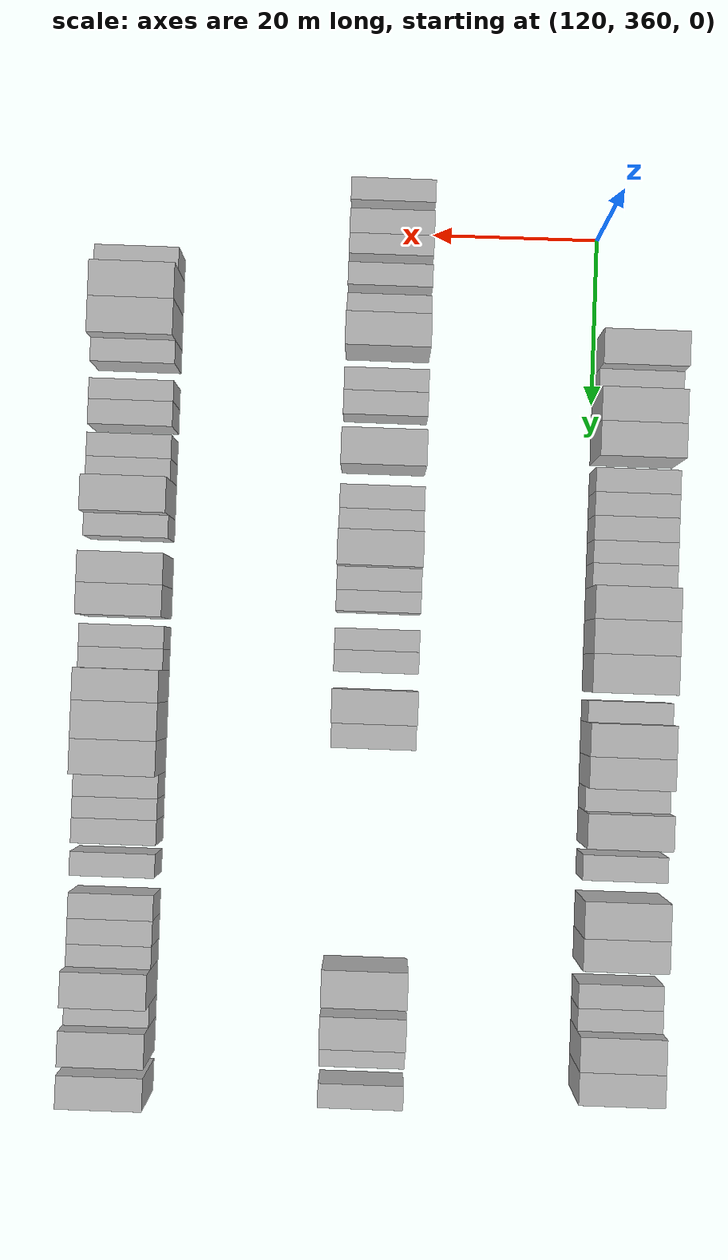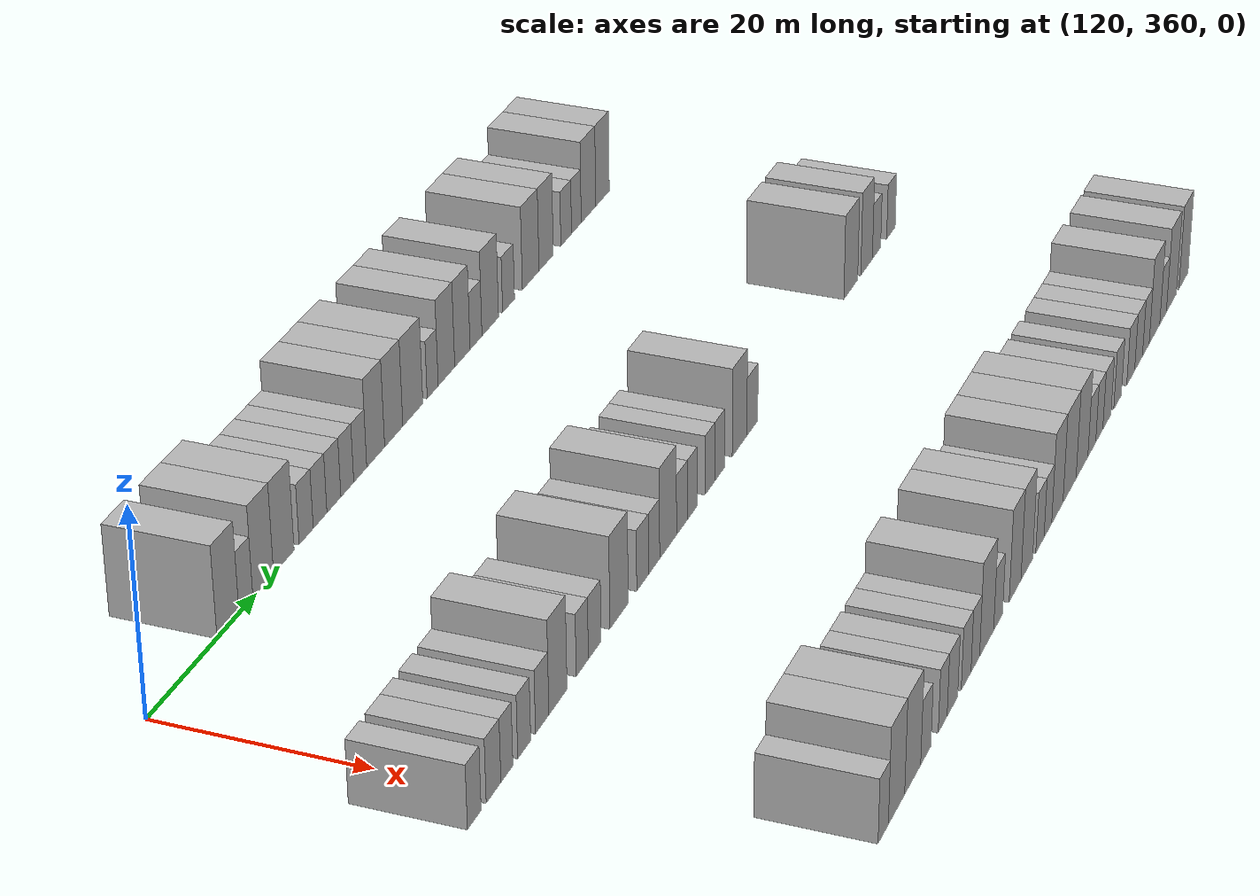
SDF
<sdf version="1.6">
 <world name="default">
  <model name="building_866">
   <static>1</static>
   <pose>115.0000 374.6631 0 0.000000 0.000000 0.000000</pose>
   <link name="link">
    <pose>0 0 4.50 0 0 0</pose>
    <collision name="collision"><geometry><box><size>10.0000 4.1017 9.0000</size></box></geometry></collision>
    <visual name="visual">
     <cast_shadows>0</cast_shadows>
     <geometry><box><size>10.0000 4.1017 9.0000</size></box></geometry>
     <material>
      <script>
       <uri>model://HANNAS_wall/materials/scripts</uri>
       <uri>model://HANNAS_wall/materials/textures</uri>
       <name>vrc/HANNAS_wall</name>
      </script>
     </material>
    </visual>
   </link>
  </model>
  <model name="building_867">
   <static>1</static>
   <pose>115.0000 378.0253 0 0.000000 0.000000 0.000000</pose>
   <link name="link">
    <pose>0 0 3.00 0 0 0</pose>
    <collision name="collision"><geometry><box><size>10.0000 2.6227 6.0000</size></box></geometry></collision>
    <visual name="visual">
     <cast_shadows>0</cast_shadows>
     <geometry><box><size>10.0000 2.6227 6.0000</size></box></geometry>
     <material>
      <script>
       <uri>model://HANNAS_wall/materials/scripts</uri>
       <uri>model://HANNAS_wall/materials/textures</uri>
       <name>vrc/HANNAS_wall</name>
      </script>
     </material>
    </visual>
   </link>
  </model>
  <model name="building_868">
   <static>1</static>
   <pose>115.0000 381.3270 0 0.000000 0.000000 0.000000</pose>
   <link name="link">
    <pose>0 0 4.50 0 0 0</pose>
    <collision name="collision"><geometry><box><size>10.0000 3.9809 9.0000</size></box></geometry></collision>
    <visual name="visual">
     <cast_shadows>0</cast_shadows>
     <geometry><box><size>10.0000 3.9809 9.0000</size></box></geometry>
     <material>
      <script>
       <uri>model://HANNAS_wall/materials/scripts</uri>
       <uri>model://HANNAS_wall/materials/textures</uri>
       <name>vrc/HANNAS_wall</name>
      </script>
     </material>
    </visual>
   </link>
  </model>
  <model name="building_869">
   <static>1</static>
   <pose>115.0000 385.3400 0 0.000000 0.000000 0.000000</pose>
   <link name="link">
    <pose>0 0 4.50 0 0 0</pose>
    <collision name="collision"><geometry><box><size>10.0000 4.0450 9.0000</size></box></geometry></collision>
    <visual name="visual">
     <cast_shadows>0</cast_shadows>
     <geometry><box><size>10.0000 4.0450 9.0000</size></box></geometry>
     <material>
      <script>
       <uri>model://HANNAS_wall/materials/scripts</uri>
       <uri>model://HANNAS_wall/materials/textures</uri>
       <name>vrc/HANNAS_wall</name>
      </script>
     </material>
    </visual>
   </link>
  </model>
  <model name="building_870">
   <static>1</static>
   <pose>115.0000 389.7864 0 0.000000 0.000000 0.000000</pose>
   <link name="link">
    <pose>0 0 3.00 0 0 0</pose>
    <collision name="collision"><geometry><box><size>10.0000 2.8479 6.0000</size></box></geometry></collision>
    <visual name="visual">
     <cast_shadows>0</cast_shadows>
     <geometry><box><size>10.0000 2.8479 6.0000</size></box></geometry>
     <material>
      <script>
       <uri>model://HANNAS_wall/materials/scripts</uri>
       <uri>model://HANNAS_wall/materials/textures</uri>
       <name>vrc/HANNAS_wall</name>
      </script>
     </material>
    </visual>
   </link>
  </model>
  <model name="building_871">
   <static>1</static>
   <pose>115.0000 392.6014 0 0.000000 0.000000 0.000000</pose>
   <link name="link">
    <pose>0 0 3.00 0 0 0</pose>
    <collision name="collision"><geometry><box><size>10.0000 2.7822 6.0000</size></box></geometry></collision>
    <visual name="visual">
     <cast_shadows>0</cast_shadows>
     <geometry><box><size>10.0000 2.7822 6.0000</size></box></geometry>
     <material>
      <script>
       <uri>model://HANNAS_wall/materials/scripts</uri>
       <uri>model://HANNAS_wall/materials/textures</uri>
       <name>vrc/HANNAS_wall</name>
      </script>
     </material>
    </visual>
   </link>
  </model>
  <model name="building_872">
   <static>1</static>
   <pose>115.0000 395.4391 0 0.000000 0.000000 0.000000</pose>
   <link name="link">
    <pose>0 0 3.00 0 0 0</pose>
    <collision name="collision"><geometry><box><size>10.0000 2.8932 6.0000</size></box></geometry></collision>
    <visual name="visual">
     <cast_shadows>0</cast_shadows>
     <geometry><box><size>10.0000 2.8932 6.0000</size></box></geometry>
     <material>
      <script>
       <uri>model://HANNAS_wall/materials/scripts</uri>
       <uri>model://HANNAS_wall/materials/textures</uri>
       <name>vrc/HANNAS_wall</name>
      </script>
     </material>
    </visual>
   </link>
  </model>
  <model name="building_873">
   <static>1</static>
   <pose>115.0000 398.2357 0 0.000000 0.000000 0.000000</pose>
   <link name="link">
    <pose>0 0 3.00 0 0 0</pose>
    <collision name="collision"><geometry><box><size>10.0000 2.7000 6.0000</size></box></geometry></collision>
    <visual name="visual">
     <cast_shadows>0</cast_shadows>
     <geometry><box><size>10.0000 2.7000 6.0000</size></box></geometry>
     <material>
      <script>
       <uri>model://HANNAS_wall/materials/scripts</uri>
       <uri>model://HANNAS_wall/materials/textures</uri>
       <name>vrc/HANNAS_wall</name>
      </script>
     </material>
    </visual>
   </link>
  </model>
  <model name="building_874">
   <static>1</static>
   <pose>115.0000 400.9714 0 0.000000 0.000000 0.000000</pose>
   <link name="link">
    <pose>0 0 3.00 0 0 0</pose>
    <collision name="collision"><geometry><box><size>10.0000 2.7713 6.0000</size></box></geometry></collision>
    <visual name="visual">
     <cast_shadows>0</cast_shadows>
     <geometry><box><size>10.0000 2.7713 6.0000</size></box></geometry>
     <material>
      <script>
       <uri>model://HANNAS_wall/materials/scripts</uri>
       <uri>model://HANNAS_wall/materials/textures</uri>
       <name>vrc/HANNAS_wall</name>
      </script>
     </material>
    </visual>
   </link>
  </model>
  <model name="building_875">
   <static>1</static>
   <pose>115.0000 404.2949 0 0.000000 0.000000 0.000000</pose>
   <link name="link">
    <pose>0 0 4.50 0 0 0</pose>
    <collision name="collision"><geometry><box><size>10.0000 3.8757 9.0000</size></box></geometry></collision>
    <visual name="visual">
     <cast_shadows>0</cast_shadows>
     <geometry><box><size>10.0000 3.8757 9.0000</size></box></geometry>
     <material>
      <script>
       <uri>model://HANNAS_wall/materials/scripts</uri>
       <uri>model://HANNAS_wall/materials/textures</uri>
       <name>vrc/HANNAS_wall</name>
      </script>
     </material>
    </visual>
   </link>
  </model>
  <model name="building_876">
   <static>1</static>
   <pose>115.0000 408.2386 0 0.000000 0.000000 0.000000</pose>
   <link name="link">
    <pose>0 0 4.50 0 0 0</pose>
    <collision name="collision"><geometry><box><size>10.0000 4.0117 9.0000</size></box></geometry></collision>
    <visual name="visual">
     <cast_shadows>0</cast_shadows>
     <geometry><box><size>10.0000 4.0117 9.0000</size></box></geometry>
     <material>
      <script>
       <uri>model://HANNAS_wall/materials/scripts</uri>
       <uri>model://HANNAS_wall/materials/textures</uri>
       <name>vrc/HANNAS_wall</name>
      </script>
     </material>
    </visual>
   </link>
  </model>
  <model name="building_877">
   <static>1</static>
   <pose>115.0000 412.4932 0 0.000000 0.000000 0.000000</pose>
   <link name="link">
    <pose>0 0 4.50 0 0 0</pose>
    <collision name="collision"><geometry><box><size>10.0000 4.4974 9.0000</size></box></geometry></collision>
    <visual name="visual">
     <cast_shadows>0</cast_shadows>
     <geometry><box><size>10.0000 4.4974 9.0000</size></box></geometry>
     <material>
      <script>
       <uri>model://HANNAS_wall/materials/scripts</uri>
       <uri>model://HANNAS_wall/materials/textures</uri>
       <name>vrc/HANNAS_wall</name>
      </script>
     </material>
    </visual>
   </link>
  </model>
  <model name="building_878">
   <static>1</static>
   <pose>115.0000 417.0124 0 0.000000 0.000000 0.000000</pose>
   <link name="link">
    <pose>0 0 3.00 0 0 0</pose>
    <collision name="collision"><geometry><box><size>10.0000 2.5411 6.0000</size></box></geometry></collision>
    <visual name="visual">
     <cast_shadows>0</cast_shadows>
     <geometry><box><size>10.0000 2.5411 6.0000</size></box></geometry>
     <material>
      <script>
       <uri>model://HANNAS_wall/materials/scripts</uri>
       <uri>model://HANNAS_wall/materials/textures</uri>
       <name>vrc/HANNAS_wall</name>
      </script>
     </material>
    </visual>
   </link>
  </model>
  <model name="building_879">
   <static>1</static>
   <pose>115.0000 420.2145 0 0.000000 0.000000 0.000000</pose>
   <link name="link">
    <pose>0 0 4.50 0 0 0</pose>
    <collision name="collision"><geometry><box><size>10.0000 3.8631 9.0000</size></box></geometry></collision>
    <visual name="visual">
     <cast_shadows>0</cast_shadows>
     <geometry><box><size>10.0000 3.8631 9.0000</size></box></geometry>
     <material>
      <script>
       <uri>model://HANNAS_wall/materials/scripts</uri>
       <uri>model://HANNAS_wall/materials/textures</uri>
       <name>vrc/HANNAS_wall</name>
      </script>
     </material>
    </visual>
   </link>
  </model>
  <model name="building_880">
   <static>1</static>
   <pose>115.0000 423.9788 0 0.000000 0.000000 0.000000</pose>
   <link name="link">
    <pose>0 0 4.50 0 0 0</pose>
    <collision name="collision"><geometry><box><size>10.0000 3.6656 9.0000</size></box></geometry></collision>
    <visual name="visual">
     <cast_shadows>0</cast_shadows>
     <geometry><box><size>10.0000 3.6656 9.0000</size></box></geometry>
     <material>
      <script>
       <uri>model://HANNAS_wall/materials/scripts</uri>
       <uri>model://HANNAS_wall/materials/textures</uri>
       <name>vrc/HANNAS_wall</name>
      </script>
     </material>
    </visual>
   </link>
  </model>
  <model name="building_881">
   <static>1</static>
   <pose>115.0000 427.2420 0 0.000000 0.000000 0.000000</pose>
   <link name="link">
    <pose>0 0 3.00 0 0 0</pose>
    <collision name="collision"><geometry><box><size>10.0000 2.8608 6.0000</size></box></geometry></collision>
    <visual name="visual">
     <cast_shadows>0</cast_shadows>
     <geometry><box><size>10.0000 2.8608 6.0000</size></box></geometry>
     <material>
      <script>
       <uri>model://HANNAS_wall/materials/scripts</uri>
       <uri>model://HANNAS_wall/materials/textures</uri>
       <name>vrc/HANNAS_wall</name>
      </script>
     </material>
    </visual>
   </link>
  </model>
  <model name="building_882">
   <static>1</static>
   <pose>115.0000 430.7147 0 0.000000 0.000000 0.000000</pose>
   <link name="link">
    <pose>0 0 4.50 0 0 0</pose>
    <collision name="collision"><geometry><box><size>10.0000 4.0846 9.0000</size></box></geometry></collision>
    <visual name="visual">
     <cast_shadows>0</cast_shadows>
     <geometry><box><size>10.0000 4.0846 9.0000</size></box></geometry>
     <material>
      <script>
       <uri>model://HANNAS_wall/materials/scripts</uri>
       <uri>model://HANNAS_wall/materials/textures</uri>
       <name>vrc/HANNAS_wall</name>
      </script>
     </material>
    </visual>
   </link>
  </model>
  <model name="building_883">
   <static>1</static>
   <pose>115.0000 435.2503 0 0.000000 0.000000 0.000000</pose>
   <link name="link">
    <pose>0 0 3.00 0 0 0</pose>
    <collision name="collision"><geometry><box><size>10.0000 2.9865 6.0000</size></box></geometry></collision>
    <visual name="visual">
     <cast_shadows>0</cast_shadows>
     <geometry><box><size>10.0000 2.9865 6.0000</size></box></geometry>
     <material>
      <script>
       <uri>model://HANNAS_wall/materials/scripts</uri>
       <uri>model://HANNAS_wall/materials/textures</uri>
       <name>vrc/HANNAS_wall</name>
      </script>
     </material>
    </visual>
   </link>
  </model>
  <model name="building_884">
   <static>1</static>
   <pose>115.0000 440.8868 0 0.000000 0.000000 0.000000</pose>
   <link name="link">
    <pose>0 0 4.50 0 0 0</pose>
    <collision name="collision"><geometry><box><size>10.0000 4.2866 9.0000</size></box></geometry></collision>
    <visual name="visual">
     <cast_shadows>0</cast_shadows>
     <geometry><box><size>10.0000 4.2866 9.0000</size></box></geometry>
     <material>
      <script>
       <uri>model://HANNAS_wall/materials/scripts</uri>
       <uri>model://HANNAS_wall/materials/textures</uri>
       <name>vrc/HANNAS_wall</name>
      </script>
     </material>
    </visual>
   </link>
  </model>
  <model name="building_885">
   <static>1</static>
   <pose>115.0000 444.8988 0 0.000000 0.000000 0.000000</pose>
   <link name="link">
    <pose>0 0 4.50 0 0 0</pose>
    <collision name="collision"><geometry><box><size>10.0000 3.7375 9.0000</size></box></geometry></collision>
    <visual name="visual">
     <cast_shadows>0</cast_shadows>
     <geometry><box><size>10.0000 3.7375 9.0000</size></box></geometry>
     <material>
      <script>
       <uri>model://HANNAS_wall/materials/scripts</uri>
       <uri>model://HANNAS_wall/materials/textures</uri>
       <name>vrc/HANNAS_wall</name>
      </script>
     </material>
    </visual>
   </link>
  </model>
  <model name="building_886">
   <static>1</static>
   <pose>115.0000 450.2038 0 0.000000 0.000000 0.000000</pose>
   <link name="link">
    <pose>0 0 3.00 0 0 0</pose>
    <collision name="collision"><geometry><box><size>10.0000 2.8724 6.0000</size></box></geometry></collision>
    <visual name="visual">
     <cast_shadows>0</cast_shadows>
     <geometry><box><size>10.0000 2.8724 6.0000</size></box></geometry>
     <material>
      <script>
       <uri>model://HANNAS_wall/materials/scripts</uri>
       <uri>model://HANNAS_wall/materials/textures</uri>
       <name>vrc/HANNAS_wall</name>
      </script>
     </material>
    </visual>
   </link>
  </model>
  <model name="building_887">
   <static>1</static>
   <pose>115.0000 452.9563 0 0.000000 0.000000 0.000000</pose>
   <link name="link">
    <pose>0 0 3.00 0 0 0</pose>
    <collision name="collision"><geometry><box><size>10.0000 2.6326 6.0000</size></box></geometry></collision>
    <visual name="visual">
     <cast_shadows>0</cast_shadows>
     <geometry><box><size>10.0000 2.6326 6.0000</size></box></geometry>
     <material>
      <script>
       <uri>model://HANNAS_wall/materials/scripts</uri>
       <uri>model://HANNAS_wall/materials/textures</uri>
       <name>vrc/HANNAS_wall</name>
      </script>
     </material>
    </visual>
   </link>
  </model>
  <model name="building_888">
   <static>1</static>
   <pose>115.0000 456.2834 0 0.000000 0.000000 0.000000</pose>
   <link name="link">
    <pose>0 0 4.50 0 0 0</pose>
    <collision name="collision"><geometry><box><size>10.0000 4.0215 9.0000</size></box></geometry></collision>
    <visual name="visual">
     <cast_shadows>0</cast_shadows>
     <geometry><box><size>10.0000 4.0215 9.0000</size></box></geometry>
     <material>
      <script>
       <uri>model://HANNAS_wall/materials/scripts</uri>
       <uri>model://HANNAS_wall/materials/textures</uri>
       <name>vrc/HANNAS_wall</name>
      </script>
     </material>
    </visual>
   </link>
  </model>
  <model name="building_889">
   <static>1</static>
   <pose>115.0000 460.1785 0 0.000000 0.000000 0.000000</pose>
   <link name="link">
    <pose>0 0 4.50 0 0 0</pose>
    <collision name="collision"><geometry><box><size>10.0000 3.7687 9.0000</size></box></geometry></collision>
    <visual name="visual">
     <cast_shadows>0</cast_shadows>
     <geometry><box><size>10.0000 3.7687 9.0000</size></box></geometry>
     <material>
      <script>
       <uri>model://HANNAS_wall/materials/scripts</uri>
       <uri>model://HANNAS_wall/materials/textures</uri>
       <name>vrc/HANNAS_wall</name>
      </script>
     </material>
    </visual>
   </link>
  </model>
  <model name="building_1092">
   <static>1</static>
   <pose>145.0000 356.4794 0 0.000000 0.000000 0.000000</pose>
   <link name="link">
    <pose>0 0 3.00 0 0 0</pose>
    <collision name="collision"><geometry><box><size>10.0000 2.6696 6.0000</size></box></geometry></collision>
    <visual name="visual">
     <cast_shadows>0</cast_shadows>
     <geometry><box><size>10.0000 2.6696 6.0000</size></box></geometry>
     <material>
      <script>
       <uri>model://HANNAS_wall/materials/scripts</uri>
       <uri>model://HANNAS_wall/materials/textures</uri>
       <name>vrc/HANNAS_wall</name>
      </script>
     </material>
    </visual>
   </link>
  </model>
  <model name="building_1093">
   <static>1</static>
   <pose>145.0000 360.2813 0 0.000000 0.000000 0.000000</pose>
   <link name="link">
    <pose>0 0 3.00 0 0 0</pose>
    <collision name="collision"><geometry><box><size>10.0000 2.9343 6.0000</size></box></geometry></collision>
    <visual name="visual">
     <cast_shadows>0</cast_shadows>
     <geometry><box><size>10.0000 2.9343 6.0000</size></box></geometry>
     <material>
      <script>
       <uri>model://HANNAS_wall/materials/scripts</uri>
       <uri>model://HANNAS_wall/materials/textures</uri>
       <name>vrc/HANNAS_wall</name>
      </script>
     </material>
    </visual>
   </link>
  </model>
  <model name="building_1094">
   <static>1</static>
   <pose>145.0000 362.9655 0 0.000000 0.000000 0.000000</pose>
   <link name="link">
    <pose>0 0 3.00 0 0 0</pose>
    <collision name="collision"><geometry><box><size>10.0000 2.4340 6.0000</size></box></geometry></collision>
    <visual name="visual">
     <cast_shadows>0</cast_shadows>
     <geometry><box><size>10.0000 2.4340 6.0000</size></box></geometry>
     <material>
      <script>
       <uri>model://HANNAS_wall/materials/scripts</uri>
       <uri>model://HANNAS_wall/materials/textures</uri>
       <name>vrc/HANNAS_wall</name>
      </script>
     </material>
    </visual>
   </link>
  </model>
  <model name="building_1095">
   <static>1</static>
   <pose>145.0000 366.5200 0 0.000000 0.000000 0.000000</pose>
   <link name="link">
    <pose>0 0 3.00 0 0 0</pose>
    <collision name="collision"><geometry><box><size>10.0000 2.6751 6.0000</size></box></geometry></collision>
    <visual name="visual">
     <cast_shadows>0</cast_shadows>
     <geometry><box><size>10.0000 2.6751 6.0000</size></box></geometry>
     <material>
      <script>
       <uri>model://HANNAS_wall/materials/scripts</uri>
       <uri>model://HANNAS_wall/materials/textures</uri>
       <name>vrc/HANNAS_wall</name>
      </script>
     </material>
    </visual>
   </link>
  </model>
  <model name="building_1096">
   <static>1</static>
   <pose>145.0000 370.2736 0 0.000000 0.000000 0.000000</pose>
   <link name="link">
    <pose>0 0 3.00 0 0 0</pose>
    <collision name="collision"><geometry><box><size>10.0000 2.8321 6.0000</size></box></geometry></collision>
    <visual name="visual">
     <cast_shadows>0</cast_shadows>
     <geometry><box><size>10.0000 2.8321 6.0000</size></box></geometry>
     <material>
      <script>
       <uri>model://HANNAS_wall/materials/scripts</uri>
       <uri>model://HANNAS_wall/materials/textures</uri>
       <name>vrc/HANNAS_wall</name>
      </script>
     </material>
    </visual>
   </link>
  </model>
  <model name="building_1097">
   <static>1</static>
   <pose>145.0000 373.6425 0 0.000000 0.000000 0.000000</pose>
   <link name="link">
    <pose>0 0 4.50 0 0 0</pose>
    <collision name="collision"><geometry><box><size>10.0000 3.9056 9.0000</size></box></geometry></collision>
    <visual name="visual">
     <cast_shadows>0</cast_shadows>
     <geometry><box><size>10.0000 3.9056 9.0000</size></box></geometry>
     <material>
      <script>
       <uri>model://HANNAS_wall/materials/scripts</uri>
       <uri>model://HANNAS_wall/materials/textures</uri>
       <name>vrc/HANNAS_wall</name>
      </script>
     </material>
    </visual>
   </link>
  </model>
  <model name="building_1098">
   <static>1</static>
   <pose>145.0000 378.9423 0 0.000000 0.000000 0.000000</pose>
   <link name="link">
    <pose>0 0 3.00 0 0 0</pose>
    <collision name="collision"><geometry><box><size>10.0000 2.6941 6.0000</size></box></geometry></collision>
    <visual name="visual">
     <cast_shadows>0</cast_shadows>
     <geometry><box><size>10.0000 2.6941 6.0000</size></box></geometry>
     <material>
      <script>
       <uri>model://HANNAS_wall/materials/scripts</uri>
       <uri>model://HANNAS_wall/materials/textures</uri>
       <name>vrc/HANNAS_wall</name>
      </script>
     </material>
    </visual>
   </link>
  </model>
  <model name="building_1099">
   <static>1</static>
   <pose>145.0000 381.7189 0 0.000000 0.000000 0.000000</pose>
   <link name="link">
    <pose>0 0 3.00 0 0 0</pose>
    <collision name="collision"><geometry><box><size>10.0000 2.8590 6.0000</size></box></geometry></collision>
    <visual name="visual">
     <cast_shadows>0</cast_shadows>
     <geometry><box><size>10.0000 2.8590 6.0000</size></box></geometry>
     <material>
      <script>
       <uri>model://HANNAS_wall/materials/scripts</uri>
       <uri>model://HANNAS_wall/materials/textures</uri>
       <name>vrc/HANNAS_wall</name>
      </script>
     </material>
    </visual>
   </link>
  </model>
  <model name="building_1100">
   <static>1</static>
   <pose>145.0000 387.2738 0 0.000000 0.000000 0.000000</pose>
   <link name="link">
    <pose>0 0 4.50 0 0 0</pose>
    <collision name="collision"><geometry><box><size>10.0000 4.2509 9.0000</size></box></geometry></collision>
    <visual name="visual">
     <cast_shadows>0</cast_shadows>
     <geometry><box><size>10.0000 4.2509 9.0000</size></box></geometry>
     <material>
      <script>
       <uri>model://HANNAS_wall/materials/scripts</uri>
       <uri>model://HANNAS_wall/materials/textures</uri>
       <name>vrc/HANNAS_wall</name>
      </script>
     </material>
    </visual>
   </link>
  </model>
  <model name="building_1101">
   <static>1</static>
   <pose>145.0000 392.8054 0 0.000000 0.000000 0.000000</pose>
   <link name="link">
    <pose>0 0 3.00 0 0 0</pose>
    <collision name="collision"><geometry><box><size>10.0000 2.8123 6.0000</size></box></geometry></collision>
    <visual name="visual">
     <cast_shadows>0</cast_shadows>
     <geometry><box><size>10.0000 2.8123 6.0000</size></box></geometry>
     <material>
      <script>
       <uri>model://HANNAS_wall/materials/scripts</uri>
       <uri>model://HANNAS_wall/materials/textures</uri>
       <name>vrc/HANNAS_wall</name>
      </script>
     </material>
    </visual>
   </link>
  </model>
  <model name="building_1102">
   <static>1</static>
   <pose>145.0000 395.5632 0 0.000000 0.000000 0.000000</pose>
   <link name="link">
    <pose>0 0 3.00 0 0 0</pose>
    <collision name="collision"><geometry><box><size>10.0000 2.7033 6.0000</size></box></geometry></collision>
    <visual name="visual">
     <cast_shadows>0</cast_shadows>
     <geometry><box><size>10.0000 2.7033 6.0000</size></box></geometry>
     <material>
      <script>
       <uri>model://HANNAS_wall/materials/scripts</uri>
       <uri>model://HANNAS_wall/materials/textures</uri>
       <name>vrc/HANNAS_wall</name>
      </script>
     </material>
    </visual>
   </link>
  </model>
  <model name="building_1103">
   <static>1</static>
   <pose>145.0000 398.9866 0 0.000000 0.000000 0.000000</pose>
   <link name="link">
    <pose>0 0 4.50 0 0 0</pose>
    <collision name="collision"><geometry><box><size>10.0000 4.1437 9.0000</size></box></geometry></collision>
    <visual name="visual">
     <cast_shadows>0</cast_shadows>
     <geometry><box><size>10.0000 4.1437 9.0000</size></box></geometry>
     <material>
      <script>
       <uri>model://HANNAS_wall/materials/scripts</uri>
       <uri>model://HANNAS_wall/materials/textures</uri>
       <name>vrc/HANNAS_wall</name>
      </script>
     </material>
    </visual>
   </link>
  </model>
  <model name="building_1104">
   <static>1</static>
   <pose>145.0000 402.4375 0 0.000000 0.000000 0.000000</pose>
   <link name="link">
    <pose>0 0 3.00 0 0 0</pose>
    <collision name="collision"><geometry><box><size>10.0000 2.7582 6.0000</size></box></geometry></collision>
    <visual name="visual">
     <cast_shadows>0</cast_shadows>
     <geometry><box><size>10.0000 2.7582 6.0000</size></box></geometry>
     <material>
      <script>
       <uri>model://HANNAS_wall/materials/scripts</uri>
       <uri>model://HANNAS_wall/materials/textures</uri>
       <name>vrc/HANNAS_wall</name>
      </script>
     </material>
    </visual>
   </link>
  </model>
  <model name="building_1105">
   <static>1</static>
   <pose>145.0000 405.0624 0 0.000000 0.000000 0.000000</pose>
   <link name="link">
    <pose>0 0 3.00 0 0 0</pose>
    <collision name="collision"><geometry><box><size>10.0000 2.4916 6.0000</size></box></geometry></collision>
    <visual name="visual">
     <cast_shadows>0</cast_shadows>
     <geometry><box><size>10.0000 2.4916 6.0000</size></box></geometry>
     <material>
      <script>
       <uri>model://HANNAS_wall/materials/scripts</uri>
       <uri>model://HANNAS_wall/materials/textures</uri>
       <name>vrc/HANNAS_wall</name>
      </script>
     </material>
    </visual>
   </link>
  </model>
  <model name="building_1106">
   <static>1</static>
   <pose>145.0000 409.5793 0 0.000000 0.000000 0.000000</pose>
   <link name="link">
    <pose>0 0 3.00 0 0 0</pose>
    <collision name="collision"><geometry><box><size>10.0000 2.5421 6.0000</size></box></geometry></collision>
    <visual name="visual">
     <cast_shadows>0</cast_shadows>
     <geometry><box><size>10.0000 2.5421 6.0000</size></box></geometry>
     <material>
      <script>
       <uri>model://HANNAS_wall/materials/scripts</uri>
       <uri>model://HANNAS_wall/materials/textures</uri>
       <name>vrc/HANNAS_wall</name>
      </script>
     </material>
    </visual>
   </link>
  </model>
  <model name="building_1107">
   <static>1</static>
   <pose>145.0000 412.1396 0 0.000000 0.000000 0.000000</pose>
   <link name="link">
    <pose>0 0 3.00 0 0 0</pose>
    <collision name="collision"><geometry><box><size>10.0000 2.5786 6.0000</size></box></geometry></collision>
    <visual name="visual">
     <cast_shadows>0</cast_shadows>
     <geometry><box><size>10.0000 2.5786 6.0000</size></box></geometry>
     <material>
      <script>
       <uri>model://HANNAS_wall/materials/scripts</uri>
       <uri>model://HANNAS_wall/materials/textures</uri>
       <name>vrc/HANNAS_wall</name>
      </script>
     </material>
    </visual>
   </link>
  </model>
  <model name="building_1108">
   <static>1</static>
   <pose>145.0000 417.4006 0 0.000000 0.000000 0.000000</pose>
   <link name="link">
    <pose>0 0 4.50 0 0 0</pose>
    <collision name="collision"><geometry><box><size>10.0000 3.9433 9.0000</size></box></geometry></collision>
    <visual name="visual">
     <cast_shadows>0</cast_shadows>
     <geometry><box><size>10.0000 3.9433 9.0000</size></box></geometry>
     <material>
      <script>
       <uri>model://HANNAS_wall/materials/scripts</uri>
       <uri>model://HANNAS_wall/materials/textures</uri>
       <name>vrc/HANNAS_wall</name>
      </script>
     </material>
    </visual>
   </link>
  </model>
  <model name="building_1109">
   <static>1</static>
   <pose>145.0000 420.8625 0 0.000000 0.000000 0.000000</pose>
   <link name="link">
    <pose>0 0 3.00 0 0 0</pose>
    <collision name="collision"><geometry><box><size>10.0000 2.9807 6.0000</size></box></geometry></collision>
    <visual name="visual">
     <cast_shadows>0</cast_shadows>
     <geometry><box><size>10.0000 2.9807 6.0000</size></box></geometry>
     <material>
      <script>
       <uri>model://HANNAS_wall/materials/scripts</uri>
       <uri>model://HANNAS_wall/materials/textures</uri>
       <name>vrc/HANNAS_wall</name>
      </script>
     </material>
    </visual>
   </link>
  </model>
  <model name="building_1110">
   <static>1</static>
   <pose>145.0000 449.8585 0 0.000000 0.000000 0.000000</pose>
   <link name="link">
    <pose>0 0 4.50 0 0 0</pose>
    <collision name="collision"><geometry><box><size>10.0000 4.3371 9.0000</size></box></geometry></collision>
    <visual name="visual">
     <cast_shadows>0</cast_shadows>
     <geometry><box><size>10.0000 4.3371 9.0000</size></box></geometry>
     <material>
      <script>
       <uri>model://HANNAS_wall/materials/scripts</uri>
       <uri>model://HANNAS_wall/materials/textures</uri>
       <name>vrc/HANNAS_wall</name>
      </script>
     </material>
    </visual>
   </link>
  </model>
  <model name="building_1111">
   <static>1</static>
   <pose>145.0000 454.8981 0 0.000000 0.000000 0.000000</pose>
   <link name="link">
    <pose>0 0 4.50 0 0 0</pose>
    <collision name="collision"><geometry><box><size>10.0000 3.7421 9.0000</size></box></geometry></collision>
    <visual name="visual">
     <cast_shadows>0</cast_shadows>
     <geometry><box><size>10.0000 3.7421 9.0000</size></box></geometry>
     <material>
      <script>
       <uri>model://HANNAS_wall/materials/scripts</uri>
       <uri>model://HANNAS_wall/materials/textures</uri>
       <name>vrc/HANNAS_wall</name>
      </script>
     </material>
    </visual>
   </link>
  </model>
  <model name="building_1112">
   <static>1</static>
   <pose>145.0000 458.1113 0 0.000000 0.000000 0.000000</pose>
   <link name="link">
    <pose>0 0 3.00 0 0 0</pose>
    <collision name="collision"><geometry><box><size>10.0000 2.6843 6.0000</size></box></geometry></collision>
    <visual name="visual">
     <cast_shadows>0</cast_shadows>
     <geometry><box><size>10.0000 2.6843 6.0000</size></box></geometry>
     <material>
      <script>
       <uri>model://HANNAS_wall/materials/scripts</uri>
       <uri>model://HANNAS_wall/materials/textures</uri>
       <name>vrc/HANNAS_wall</name>
      </script>
     </material>
    </visual>
   </link>
  </model>
  <model name="building_1113">
   <static>1</static>
   <pose>145.0000 462.8658 0 0.000000 0.000000 0.000000</pose>
   <link name="link">
    <pose>0 0 3.00 0 0 0</pose>
    <collision name="collision"><geometry><box><size>10.0000 2.8247 6.0000</size></box></geometry></collision>
    <visual name="visual">
     <cast_shadows>0</cast_shadows>
     <geometry><box><size>10.0000 2.8247 6.0000</size></box></geometry>
     <material>
      <script>
       <uri>model://HANNAS_wall/materials/scripts</uri>
       <uri>model://HANNAS_wall/materials/textures</uri>
       <name>vrc/HANNAS_wall</name>
      </script>
     </material>
    </visual>
   </link>
  </model>
  <model name="building_1306">
   <static>1</static>
   <pose>175.0000 365.5348 0 0.000000 0.000000 0.000000</pose>
   <link name="link">
    <pose>0 0 3.00 0 0 0</pose>
    <collision name="collision"><geometry><box><size>10.0000 2.6071 6.0000</size></box></geometry></collision>
    <visual name="visual">
     <cast_shadows>0</cast_shadows>
     <geometry><box><size>10.0000 2.6071 6.0000</size></box></geometry>
     <material>
      <script>
       <uri>model://HANNAS_wall/materials/scripts</uri>
       <uri>model://HANNAS_wall/materials/textures</uri>
       <name>vrc/HANNAS_wall</name>
      </script>
     </material>
    </visual>
   </link>
  </model>
  <model name="building_1307">
   <static>1</static>
   <pose>175.0000 368.9367 0 0.000000 0.000000 0.000000</pose>
   <link name="link">
    <pose>0 0 4.50 0 0 0</pose>
    <collision name="collision"><geometry><box><size>10.0000 4.1967 9.0000</size></box></geometry></collision>
    <visual name="visual">
     <cast_shadows>0</cast_shadows>
     <geometry><box><size>10.0000 4.1967 9.0000</size></box></geometry>
     <material>
      <script>
       <uri>model://HANNAS_wall/materials/scripts</uri>
       <uri>model://HANNAS_wall/materials/textures</uri>
       <name>vrc/HANNAS_wall</name>
      </script>
     </material>
    </visual>
   </link>
  </model>
  <model name="building_1308">
   <static>1</static>
   <pose>175.0000 373.1446 0 0.000000 0.000000 0.000000</pose>
   <link name="link">
    <pose>0 0 4.50 0 0 0</pose>
    <collision name="collision"><geometry><box><size>10.0000 4.2191 9.0000</size></box></geometry></collision>
    <visual name="visual">
     <cast_shadows>0</cast_shadows>
     <geometry><box><size>10.0000 4.2191 9.0000</size></box></geometry>
     <material>
      <script>
       <uri>model://HANNAS_wall/materials/scripts</uri>
       <uri>model://HANNAS_wall/materials/textures</uri>
       <name>vrc/HANNAS_wall</name>
      </script>
     </material>
    </visual>
   </link>
  </model>
  <model name="building_1309">
   <static>1</static>
   <pose>175.0000 376.6307 0 0.000000 0.000000 0.000000</pose>
   <link name="link">
    <pose>0 0 3.00 0 0 0</pose>
    <collision name="collision"><geometry><box><size>10.0000 2.7531 6.0000</size></box></geometry></collision>
    <visual name="visual">
     <cast_shadows>0</cast_shadows>
     <geometry><box><size>10.0000 2.7531 6.0000</size></box></geometry>
     <material>
      <script>
       <uri>model://HANNAS_wall/materials/scripts</uri>
       <uri>model://HANNAS_wall/materials/textures</uri>
       <name>vrc/HANNAS_wall</name>
      </script>
     </material>
    </visual>
   </link>
  </model>
  <model name="building_1310">
   <static>1</static>
   <pose>175.0000 381.2375 0 0.000000 0.000000 0.000000</pose>
   <link name="link">
    <pose>0 0 3.00 0 0 0</pose>
    <collision name="collision"><geometry><box><size>10.0000 2.4604 6.0000</size></box></geometry></collision>
    <visual name="visual">
     <cast_shadows>0</cast_shadows>
     <geometry><box><size>10.0000 2.4604 6.0000</size></box></geometry>
     <material>
      <script>
       <uri>model://HANNAS_wall/materials/scripts</uri>
       <uri>model://HANNAS_wall/materials/textures</uri>
       <name>vrc/HANNAS_wall</name>
      </script>
     </material>
    </visual>
   </link>
  </model>
  <model name="building_1311">
   <static>1</static>
   <pose>175.0000 383.9438 0 0.000000 0.000000 0.000000</pose>
   <link name="link">
    <pose>0 0 3.00 0 0 0</pose>
    <collision name="collision"><geometry><box><size>10.0000 2.9522 6.0000</size></box></geometry></collision>
    <visual name="visual">
     <cast_shadows>0</cast_shadows>
     <geometry><box><size>10.0000 2.9522 6.0000</size></box></geometry>
     <material>
      <script>
       <uri>model://HANNAS_wall/materials/scripts</uri>
       <uri>model://HANNAS_wall/materials/textures</uri>
       <name>vrc/HANNAS_wall</name>
      </script>
     </material>
    </visual>
   </link>
  </model>
  <model name="building_1312">
   <static>1</static>
   <pose>175.0000 387.8179 0 0.000000 0.000000 0.000000</pose>
   <link name="link">
    <pose>0 0 3.00 0 0 0</pose>
    <collision name="collision"><geometry><box><size>10.0000 2.7959 6.0000</size></box></geometry></collision>
    <visual name="visual">
     <cast_shadows>0</cast_shadows>
     <geometry><box><size>10.0000 2.7959 6.0000</size></box></geometry>
     <material>
      <script>
       <uri>model://HANNAS_wall/materials/scripts</uri>
       <uri>model://HANNAS_wall/materials/textures</uri>
       <name>vrc/HANNAS_wall</name>
      </script>
     </material>
    </visual>
   </link>
  </model>
  <model name="building_1313">
   <static>1</static>
   <pose>175.0000 390.4644 0 0.000000 0.000000 0.000000</pose>
   <link name="link">
    <pose>0 0 3.00 0 0 0</pose>
    <collision name="collision"><geometry><box><size>10.0000 2.4971 6.0000</size></box></geometry></collision>
    <visual name="visual">
     <cast_shadows>0</cast_shadows>
     <geometry><box><size>10.0000 2.4971 6.0000</size></box></geometry>
     <material>
      <script>
       <uri>model://HANNAS_wall/materials/scripts</uri>
       <uri>model://HANNAS_wall/materials/textures</uri>
       <name>vrc/HANNAS_wall</name>
      </script>
     </material>
    </visual>
   </link>
  </model>
  <model name="building_1314">
   <static>1</static>
   <pose>175.0000 393.7915 0 0.000000 0.000000 0.000000</pose>
   <link name="link">
    <pose>0 0 4.50 0 0 0</pose>
    <collision name="collision"><geometry><box><size>10.0000 4.1571 9.0000</size></box></geometry></collision>
    <visual name="visual">
     <cast_shadows>0</cast_shadows>
     <geometry><box><size>10.0000 4.1571 9.0000</size></box></geometry>
     <material>
      <script>
       <uri>model://HANNAS_wall/materials/scripts</uri>
       <uri>model://HANNAS_wall/materials/textures</uri>
       <name>vrc/HANNAS_wall</name>
      </script>
     </material>
    </visual>
   </link>
  </model>
  <model name="building_1315">
   <static>1</static>
   <pose>175.0000 397.2161 0 0.000000 0.000000 0.000000</pose>
   <link name="link">
    <pose>0 0 3.00 0 0 0</pose>
    <collision name="collision"><geometry><box><size>10.0000 2.6921 6.0000</size></box></geometry></collision>
    <visual name="visual">
     <cast_shadows>0</cast_shadows>
     <geometry><box><size>10.0000 2.6921 6.0000</size></box></geometry>
     <material>
      <script>
       <uri>model://HANNAS_wall/materials/scripts</uri>
       <uri>model://HANNAS_wall/materials/textures</uri>
       <name>vrc/HANNAS_wall</name>
      </script>
     </material>
    </visual>
   </link>
  </model>
  <model name="building_1316">
   <static>1</static>
   <pose>175.0000 402.3889 0 0.000000 0.000000 0.000000</pose>
   <link name="link">
    <pose>0 0 4.50 0 0 0</pose>
    <collision name="collision"><geometry><box><size>10.0000 3.6536 9.0000</size></box></geometry></collision>
    <visual name="visual">
     <cast_shadows>0</cast_shadows>
     <geometry><box><size>10.0000 3.6536 9.0000</size></box></geometry>
     <material>
      <script>
       <uri>model://HANNAS_wall/materials/scripts</uri>
       <uri>model://HANNAS_wall/materials/textures</uri>
       <name>vrc/HANNAS_wall</name>
      </script>
     </material>
    </visual>
   </link>
  </model>
  <model name="building_1317">
   <static>1</static>
   <pose>175.0000 406.0615 0 0.000000 0.000000 0.000000</pose>
   <link name="link">
    <pose>0 0 4.50 0 0 0</pose>
    <collision name="collision"><geometry><box><size>10.0000 3.6916 9.0000</size></box></geometry></collision>
    <visual name="visual">
     <cast_shadows>0</cast_shadows>
     <geometry><box><size>10.0000 3.6916 9.0000</size></box></geometry>
     <material>
      <script>
       <uri>model://HANNAS_wall/materials/scripts</uri>
       <uri>model://HANNAS_wall/materials/textures</uri>
       <name>vrc/HANNAS_wall</name>
      </script>
     </material>
    </visual>
   </link>
  </model>
  <model name="building_1318">
   <static>1</static>
   <pose>175.0000 410.2412 0 0.000000 0.000000 0.000000</pose>
   <link name="link">
    <pose>0 0 3.00 0 0 0</pose>
    <collision name="collision"><geometry><box><size>10.0000 2.6678 6.0000</size></box></geometry></collision>
    <visual name="visual">
     <cast_shadows>0</cast_shadows>
     <geometry><box><size>10.0000 2.6678 6.0000</size></box></geometry>
     <material>
      <script>
       <uri>model://HANNAS_wall/materials/scripts</uri>
       <uri>model://HANNAS_wall/materials/textures</uri>
       <name>vrc/HANNAS_wall</name>
      </script>
     </material>
    </visual>
   </link>
  </model>
  <model name="building_1319">
   <static>1</static>
   <pose>175.0000 412.8196 0 0.000000 0.000000 0.000000</pose>
   <link name="link">
    <pose>0 0 3.00 0 0 0</pose>
    <collision name="collision"><geometry><box><size>10.0000 2.4889 6.0000</size></box></geometry></collision>
    <visual name="visual">
     <cast_shadows>0</cast_shadows>
     <geometry><box><size>10.0000 2.4889 6.0000</size></box></geometry>
     <material>
      <script>
       <uri>model://HANNAS_wall/materials/scripts</uri>
       <uri>model://HANNAS_wall/materials/textures</uri>
       <name>vrc/HANNAS_wall</name>
      </script>
     </material>
    </visual>
   </link>
  </model>
  <model name="building_1320">
   <static>1</static>
   <pose>175.0000 415.9425 0 0.000000 0.000000 0.000000</pose>
   <link name="link">
    <pose>0 0 4.50 0 0 0</pose>
    <collision name="collision"><geometry><box><size>10.0000 3.7571 9.0000</size></box></geometry></collision>
    <visual name="visual">
     <cast_shadows>0</cast_shadows>
     <geometry><box><size>10.0000 3.7571 9.0000</size></box></geometry>
     <material>
      <script>
       <uri>model://HANNAS_wall/materials/scripts</uri>
       <uri>model://HANNAS_wall/materials/textures</uri>
       <name>vrc/HANNAS_wall</name>
      </script>
     </material>
    </visual>
   </link>
  </model>
  <model name="building_1321">
   <static>1</static>
   <pose>175.0000 420.0362 0 0.000000 0.000000 0.000000</pose>
   <link name="link">
    <pose>0 0 4.50 0 0 0</pose>
    <collision name="collision"><geometry><box><size>10.0000 4.4303 9.0000</size></box></geometry></collision>
    <visual name="visual">
     <cast_shadows>0</cast_shadows>
     <geometry><box><size>10.0000 4.4303 9.0000</size></box></geometry>
     <material>
      <script>
       <uri>model://HANNAS_wall/materials/scripts</uri>
       <uri>model://HANNAS_wall/materials/textures</uri>
       <name>vrc/HANNAS_wall</name>
      </script>
     </material>
    </visual>
   </link>
  </model>
  <model name="building_1322">
   <static>1</static>
   <pose>175.0000 424.2989 0 0.000000 0.000000 0.000000</pose>
   <link name="link">
    <pose>0 0 4.50 0 0 0</pose>
    <collision name="collision"><geometry><box><size>10.0000 4.0952 9.0000</size></box></geometry></collision>
    <visual name="visual">
     <cast_shadows>0</cast_shadows>
     <geometry><box><size>10.0000 4.0952 9.0000</size></box></geometry>
     <material>
      <script>
       <uri>model://HANNAS_wall/materials/scripts</uri>
       <uri>model://HANNAS_wall/materials/textures</uri>
       <name>vrc/HANNAS_wall</name>
      </script>
     </material>
    </visual>
   </link>
  </model>
  <model name="building_1323">
   <static>1</static>
   <pose>175.0000 427.7356 0 0.000000 0.000000 0.000000</pose>
   <link name="link">
    <pose>0 0 3.00 0 0 0</pose>
    <collision name="collision"><geometry><box><size>10.0000 2.7782 6.0000</size></box></geometry></collision>
    <visual name="visual">
     <cast_shadows>0</cast_shadows>
     <geometry><box><size>10.0000 2.7782 6.0000</size></box></geometry>
     <material>
      <script>
       <uri>model://HANNAS_wall/materials/scripts</uri>
       <uri>model://HANNAS_wall/materials/textures</uri>
       <name>vrc/HANNAS_wall</name>
      </script>
     </material>
    </visual>
   </link>
  </model>
  <model name="building_1324">
   <static>1</static>
   <pose>175.0000 430.3810 0 0.000000 0.000000 0.000000</pose>
   <link name="link">
    <pose>0 0 3.00 0 0 0</pose>
    <collision name="collision"><geometry><box><size>10.0000 2.5125 6.0000</size></box></geometry></collision>
    <visual name="visual">
     <cast_shadows>0</cast_shadows>
     <geometry><box><size>10.0000 2.5125 6.0000</size></box></geometry>
     <material>
      <script>
       <uri>model://HANNAS_wall/materials/scripts</uri>
       <uri>model://HANNAS_wall/materials/textures</uri>
       <name>vrc/HANNAS_wall</name>
      </script>
     </material>
    </visual>
   </link>
  </model>
  <model name="building_1325">
   <static>1</static>
   <pose>175.0000 433.1152 0 0.000000 0.000000 0.000000</pose>
   <link name="link">
    <pose>0 0 3.00 0 0 0</pose>
    <collision name="collision"><geometry><box><size>10.0000 2.9559 6.0000</size></box></geometry></collision>
    <visual name="visual">
     <cast_shadows>0</cast_shadows>
     <geometry><box><size>10.0000 2.9559 6.0000</size></box></geometry>
     <material>
      <script>
       <uri>model://HANNAS_wall/materials/scripts</uri>
       <uri>model://HANNAS_wall/materials/textures</uri>
       <name>vrc/HANNAS_wall</name>
      </script>
     </material>
    </visual>
   </link>
  </model>
  <model name="building_1326">
   <static>1</static>
   <pose>175.0000 436.9938 0 0.000000 0.000000 0.000000</pose>
   <link name="link">
    <pose>0 0 3.00 0 0 0</pose>
    <collision name="collision"><geometry><box><size>10.0000 2.8013 6.0000</size></box></geometry></collision>
    <visual name="visual">
     <cast_shadows>0</cast_shadows>
     <geometry><box><size>10.0000 2.8013 6.0000</size></box></geometry>
     <material>
      <script>
       <uri>model://HANNAS_wall/materials/scripts</uri>
       <uri>model://HANNAS_wall/materials/textures</uri>
       <name>vrc/HANNAS_wall</name>
      </script>
     </material>
    </visual>
   </link>
  </model>
  <model name="building_1327">
   <static>1</static>
   <pose>175.0000 441.8929 0 0.000000 0.000000 0.000000</pose>
   <link name="link">
    <pose>0 0 3.00 0 0 0</pose>
    <collision name="collision"><geometry><box><size>10.0000 2.9971 6.0000</size></box></geometry></collision>
    <visual name="visual">
     <cast_shadows>0</cast_shadows>
     <geometry><box><size>10.0000 2.9971 6.0000</size></box></geometry>
     <material>
      <script>
       <uri>model://HANNAS_wall/materials/scripts</uri>
       <uri>model://HANNAS_wall/materials/textures</uri>
       <name>vrc/HANNAS_wall</name>
      </script>
     </material>
    </visual>
   </link>
  </model>
  <model name="building_1328">
   <static>1</static>
   <pose>175.0000 444.8870 0 0.000000 0.000000 0.000000</pose>
   <link name="link">
    <pose>0 0 3.00 0 0 0</pose>
    <collision name="collision"><geometry><box><size>10.0000 2.9910 6.0000</size></box></geometry></collision>
    <visual name="visual">
     <cast_shadows>0</cast_shadows>
     <geometry><box><size>10.0000 2.9910 6.0000</size></box></geometry>
     <material>
      <script>
       <uri>model://HANNAS_wall/materials/scripts</uri>
       <uri>model://HANNAS_wall/materials/textures</uri>
       <name>vrc/HANNAS_wall</name>
      </script>
     </material>
    </visual>
   </link>
  </model>
  <model name="building_1329">
   <static>1</static>
   <pose>175.0000 447.6937 0 0.000000 0.000000 0.000000</pose>
   <link name="link">
    <pose>0 0 3.00 0 0 0</pose>
    <collision name="collision"><geometry><box><size>10.0000 2.6224 6.0000</size></box></geometry></collision>
    <visual name="visual">
     <cast_shadows>0</cast_shadows>
     <geometry><box><size>10.0000 2.6224 6.0000</size></box></geometry>
     <material>
      <script>
       <uri>model://HANNAS_wall/materials/scripts</uri>
       <uri>model://HANNAS_wall/materials/textures</uri>
       <name>vrc/HANNAS_wall</name>
      </script>
     </material>
    </visual>
   </link>
  </model>
  <model name="building_1330">
   <static>1</static>
   <pose>175.0000 451.0747 0 0.000000 0.000000 0.000000</pose>
   <link name="link">
    <pose>0 0 4.50 0 0 0</pose>
    <collision name="collision"><geometry><box><size>10.0000 4.1395 9.0000</size></box></geometry></collision>
    <visual name="visual">
     <cast_shadows>0</cast_shadows>
     <geometry><box><size>10.0000 4.1395 9.0000</size></box></geometry>
     <material>
      <script>
       <uri>model://HANNAS_wall/materials/scripts</uri>
       <uri>model://HANNAS_wall/materials/textures</uri>
       <name>vrc/HANNAS_wall</name>
      </script>
     </material>
    </visual>
   </link>
  </model>
  <model name="building_1331">
   <static>1</static>
   <pose>175.0000 454.4748 0 0.000000 0.000000 0.000000</pose>
   <link name="link">
    <pose>0 0 3.00 0 0 0</pose>
    <collision name="collision"><geometry><box><size>10.0000 2.6606 6.0000</size></box></geometry></collision>
    <visual name="visual">
     <cast_shadows>0</cast_shadows>
     <geometry><box><size>10.0000 2.6606 6.0000</size></box></geometry>
     <material>
      <script>
       <uri>model://HANNAS_wall/materials/scripts</uri>
       <uri>model://HANNAS_wall/materials/textures</uri>
       <name>vrc/HANNAS_wall</name>
      </script>
     </material>
    </visual>
   </link>
  </model>
  <model name="building_1332">
   <static>1</static>
   <pose>175.0000 457.8333 0 0.000000 0.000000 0.000000</pose>
   <link name="link">
    <pose>0 0 4.50 0 0 0</pose>
    <collision name="collision"><geometry><box><size>10.0000 4.0564 9.0000</size></box></geometry></collision>
    <visual name="visual">
     <cast_shadows>0</cast_shadows>
     <geometry><box><size>10.0000 4.0564 9.0000</size></box></geometry>
     <material>
      <script>
       <uri>model://HANNAS_wall/materials/scripts</uri>
       <uri>model://HANNAS_wall/materials/textures</uri>
       <name>vrc/HANNAS_wall</name>
      </script>
     </material>
    </visual>
   </link>
  </model>
  <model name="building_1333">
   <static>1</static>
   <pose>175.0000 462.7782 0 0.000000 0.000000 0.000000</pose>
   <link name="link">
    <pose>0 0 4.50 0 0 0</pose>
    <collision name="collision"><geometry><box><size>10.0000 3.8334 9.0000</size></box></geometry></collision>
    <visual name="visual">
     <cast_shadows>0</cast_shadows>
     <geometry><box><size>10.0000 3.8334 9.0000</size></box></geometry>
     <material>
      <script>
       <uri>model://HANNAS_wall/materials/scripts</uri>
       <uri>model://HANNAS_wall/materials/textures</uri>
       <name>vrc/HANNAS_wall</name>
      </script>
     </material>
    </visual>
   </link>
  </model>
 </world>
</sdf>
